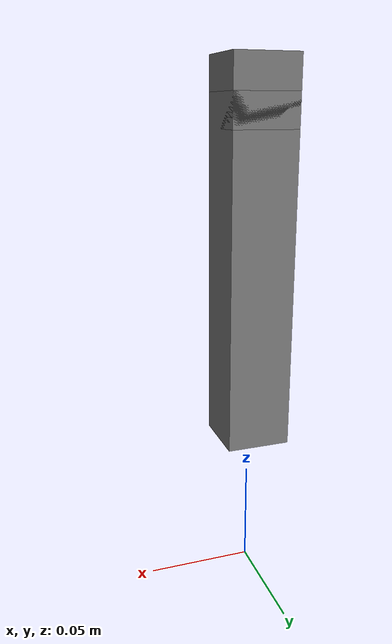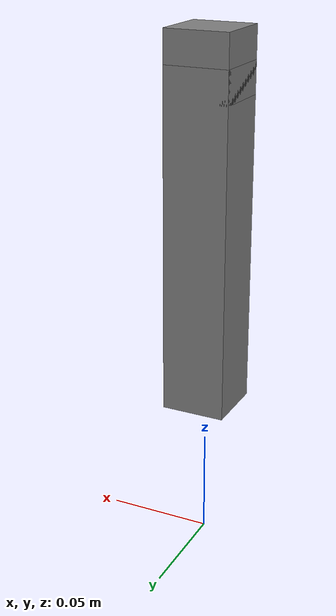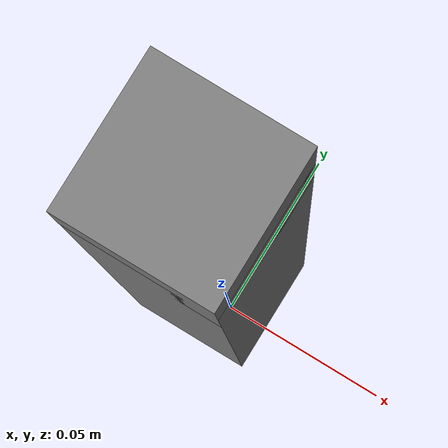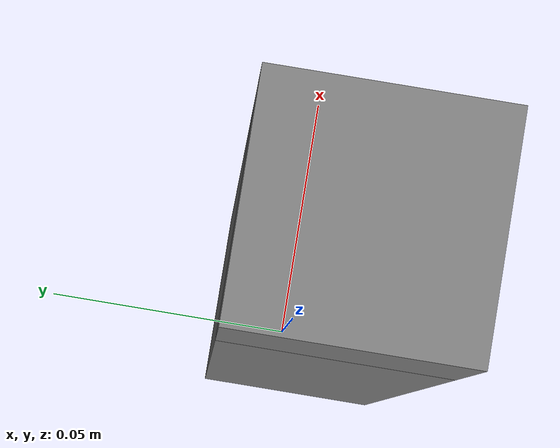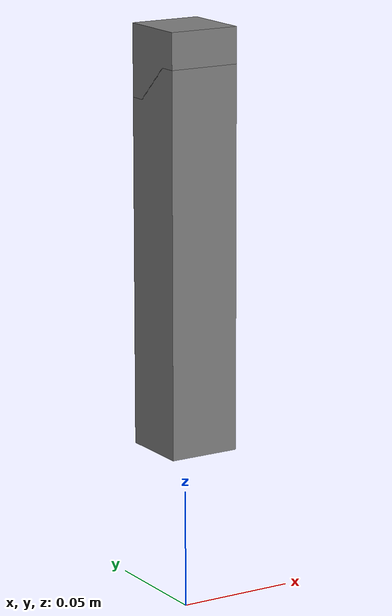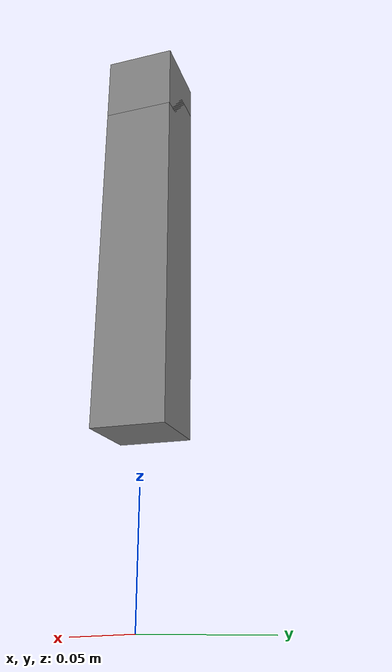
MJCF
<?xml version="1.0" encoding="utf-8"?>
<mujoco model="test_pipette">
    <worldbody>
        <body name="pipette_base" pos="0 0 0.2">
            <joint name="machine_x" type="slide" axis="1 0 0" range="-0.4 0.4"/>
            <joint name="machine_y" type="slide" axis="0 1 0" range="-0.4 0.4"/>
            <inertial pos="0 0 0" mass="1.0" diaginertia="0.1 0.1 0.1"/>

            <body name="pipette_body" pos="0 0 0">
                <joint name="machine_z" type="slide" axis="0 0 1" range="-0.3 0.1"/>
                <inertial pos="0 0 -0.08" mass="0.8" diaginertia="0.05 0.05 0.08"/>
                <geom name="pipette_wall" type="box" size="0.015 0.015 0.08" pos="0 0 -0.05" mass="0.1"/>

                <body name="plunger" pos="0 0 0.03">
                    <joint name="plunger_joint" type="slide" axis="0 0 1" range="0 0.04"/>
                    <geom name="plunger_head" type="box" size="0.015 0.015 0.015" pos="0 0 0" mass="0.1"/>
                </body>
            </body>
        </body>
    </worldbody>

    <actuator>
        <position name="x_control" joint="machine_x" ctrlrange="-0.4 0.4" kp="100"/>
        <position name="y_control" joint="machine_y" ctrlrange="-0.4 0.4" kp="100"/>
        <position name="z_control" joint="machine_z" ctrlrange="-0.3 0.1" kp="100"/>
        <position name="plunger_control" joint="plunger_joint" ctrlrange="0 0.04" kp="50"/>
    </actuator>
</mujoco>
